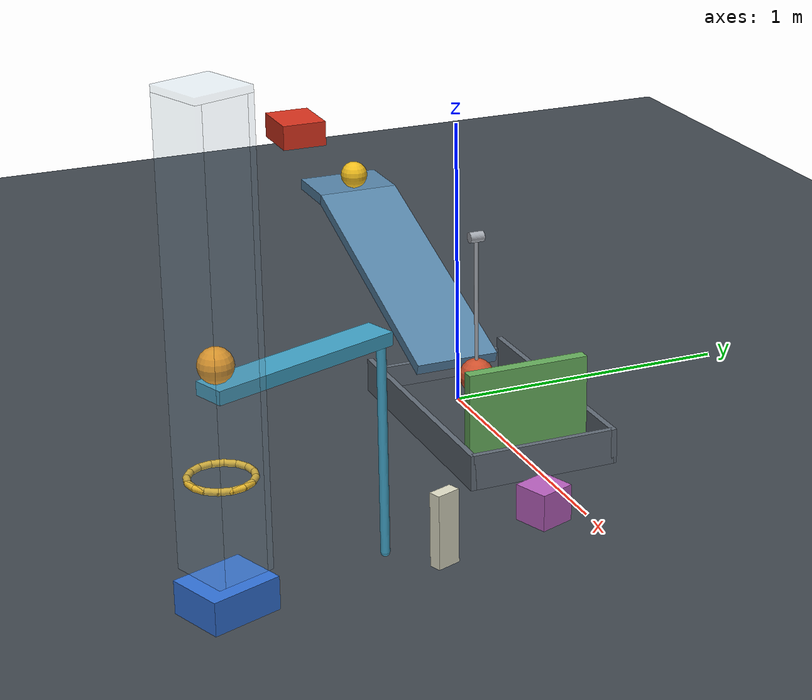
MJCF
<mujoco model="spring_ramp_pendulum_door_domino_lever_chain">
  <compiler angle="degree" autolimits="true"/>
  <option timestep="0.002" gravity="0 0 -9.81" integrator="implicitfast" cone="elliptic" iterations="100"/>
  <size njmax="4000" nconmax="800"/>

  <visual>
    <headlight ambient="0.35 0.35 0.35" diffuse="0.65 0.65 0.65" specular="0.2 0.2 0.2"/>
    <map znear="0.01" zfar="30"/>
  </visual>

  <worldbody>
    <light name="main_light" pos="-1 -3 5" dir="0.2 0.4 -1" directional="true"/>
    <camera name="overview" pos="0 -4.8 3.0" xyaxes="1 0 0 0 0.48 0.877"/>

    <geom name="floor" type="plane" size="5 5 0.1" friction="0.68 0.005 0.005" condim="6" solref="0.006 0.6901" solimp="0.95 0.99 0.001" rgba="0.25 0.28 0.31 1"/>

    <!-- The spring is compression-only: its tendon becomes slack after 0.20 m. -->
    <!-- Cart1 has 5 mm clearance above the launch shelf and travels 0.50 m to first contact. -->
    <body name="cart1" pos="-1.63969262 0 0.54702014">
      <joint name="cart1_slide" type="slide" axis="1 0 0" damping="0.20" limited="true" range="0 0.58" solreflimit="0.006 1"/>
      <geom name="cart1_chassis" type="box" size="0.11 0.09 0.05" mass="0.50" friction="0.68 0.005 0.005" condim="6" solref="0.006 0.6901" solimp="0.95 0.99 0.001" rgba="0.85 0.20 0.12 1"/>
    </body>

    <body name="ball1" pos="-0.97969262 0 0.54202014">
      <freejoint name="ball1_free"/>
      <geom name="ball1_sphere" type="sphere" size="0.05" mass="0.20" friction="0.68 0.005 0.005" condim="6" solref="0.006 0.6901" solimp="0.95 0.99 0.001" rgba="0.95 0.75 0.12 1"/>
    </body>

    <!-- The inclined top surface is 1.00 m long, 0.30 m wide, and ends at z=0.15. -->
    <!-- A level launch shelf keeps ball1 stationary until cart1 arrives. -->
    <body name="ramp1" pos="0 0 0">
      <geom name="ramp1_incline" type="box" pos="-0.47668671 0 0.30221629" quat="0.98480775 0 0.17364818 0" size="0.50 0.15 0.02" friction="0.68 0.005 0.005" condim="6" solref="0.006 0.6901" solimp="0.95 0.99 0.001" rgba="0.34 0.52 0.66 1"/>
      <geom name="ramp1_launch_shelf" type="box" pos="-1.04969262 0 0.47202014" size="0.11 0.15 0.02" friction="0.68 0.005 0.005" condim="6" solref="0.006 0.6901" solimp="0.95 0.99 0.001" rgba="0.34 0.52 0.66 1"/>
    </body>

    <!-- Bob's near surface is x=0.10: the gap from the ramp's low end is 0.10 m. -->
    <!-- Pivot-to-bob distance is 0.50 m; component masses sum to 0.35 kg. -->
    <body name="pendulum1" pos="0.16 0 0.65">
      <joint name="pendulum1_hinge" type="hinge" axis="0 -1 0" damping="0.04" limited="true" range="0 40" solreflimit="0.006 1"/>
      <geom name="pendulum1_hub" type="cylinder" quat="0.70710678 0.70710678 0 0" size="0.018 0.025" mass="0.01" friction="0.68 0.005 0.005" condim="6" solref="0.006 0.6901" solimp="0.95 0.99 0.001" rgba="0.65 0.67 0.70 1"/>
      <geom name="pendulum1_rod" type="capsule" fromto="0 0 0 0 0 -0.50" size="0.007" mass="0.04" friction="0.68 0.005 0.005" condim="6" solref="0.006 0.6901" solimp="0.95 0.99 0.001" rgba="0.65 0.67 0.70 1"/>
      <geom name="pendulum1_bob" type="sphere" pos="0 0 -0.50" size="0.06" mass="0.30" friction="0.68 0.005 0.005" condim="6" solref="0.006 0.6901" solimp="0.95 0.99 0.001" rgba="0.82 0.32 0.18 1"/>
    </body>

    <!-- Vertical-axis door: width 0.42, height 0.32, thickness 0.04 m. -->
    <!-- Positive door angle is clockwise when viewed from above. -->
    <body name="door1" pos="0.557 -0.21 0.18">
      <joint name="door1_hinge" type="hinge" axis="0 0 -1" damping="0.04" limited="true" range="0 70" solreflimit="0.006 1"/>
      <geom name="door1_panel" type="box" pos="0 0.21 0" size="0.02 0.21 0.16" mass="0.45" friction="0.68 0.005 0.005" condim="6" solref="0.006 0.6901" solimp="0.95 0.99 0.001" rgba="0.40 0.68 0.36 1"/>
    </body>

    <!-- Block and domino share a travel axis at yaw -70 degrees. -->
    <!-- Their initial face-to-face separation along that axis is 0.32 m. -->
    <body name="block1" pos="0.9773229 -0.1368290 0.06" quat="0.81915204 0 0 -0.57357644">
      <freejoint name="block1_free"/>
      <geom name="block1_cube" type="box" size="0.06 0.06 0.06" mass="0.35" friction="0.68 0.005 0.005" condim="6" solref="0.006 0.6901" solimp="0.95 0.99 0.001" rgba="0.73 0.38 0.75 1"/>
    </body>

    <body name="domino1" pos="1.1209714 -0.5314999 0.12" quat="0.81915204 0 0 -0.57357644">
      <freejoint name="domino1_free"/>
      <geom name="domino1_tile" type="box" size="0.04 0.02 0.12" mass="0.25" friction="0.68 0.005 0.005" condim="6" solref="0.006 0.6901" solimp="0.95 0.99 0.001" rgba="0.88 0.87 0.78 1"/>
    </body>

    <!-- Main lever: 0.60 x 0.10 x 0.04 m, centered on its hinge, total mass 0.50 kg. -->
    <!-- Its massless rigid striker reaches down to the domino's impact height. -->
    <!-- Initial domino-front to striker-front separation is approximately 0.18 m. -->
    <body name="lever1" pos="1.3036102 -1.0332920 0.80" quat="0.81915204 0 0 -0.57357644">
      <inertial pos="0 0 0" mass="0.50" diaginertia="0.0004833333 0.0150666667 0.0154166667"/>
      <joint name="lever1_hinge" type="hinge" axis="0 -1 0" damping="0.04" limited="true" range="0 45" solreflimit="0.006 1"/>
      <geom name="lever1_beam" type="box" size="0.30 0.05 0.02" mass="0.50" friction="0.68 0.005 0.005" condim="6" solref="0.006 0.6901" solimp="0.95 0.99 0.001" rgba="0.25 0.64 0.78 1"/>
      <geom name="lever1_left_striker" type="capsule" fromto="-0.30 0 -0.675 -0.30 0 0" size="0.014" mass="0" friction="0.68 0.005 0.005" condim="6" solref="0.006 0.6901" solimp="0.95 0.99 0.001" rgba="0.25 0.64 0.78 1"/>
    </body>

    <body name="ball2" pos="1.3959556 -1.2870090 0.87">
      <freejoint name="ball2_free"/>
      <geom name="ball2_sphere" type="sphere" size="0.05" mass="0.20" friction="0.68 0.005 0.005" condim="6" solref="0.006 0.6901" solimp="0.95 0.99 0.001" rgba="0.98 0.62 0.10 1"/>
    </body>

    <!-- Horizontal capsule ring; its inscribed clear diameter is 0.16 m. -->
    <!-- Its center is directly below ball2's initial center by 0.32 m. -->
    <body name="ring1" pos="1.3959556 -1.2870090 0.55">
      <geom name="ring1_segment_00" type="capsule" fromto="0.0917633 0 0 0.0847780 0.0351160 0" size="0.01" friction="0.68 0.005 0.005" condim="6" solref="0.006 0.6901" solimp="0.95 0.99 0.001" rgba="0.92 0.73 0.18 1"/>
      <geom name="ring1_segment_01" type="capsule" fromto="0.0847780 0.0351160 0 0.0648865 0.0648865 0" size="0.01" friction="0.68 0.005 0.005" condim="6" solref="0.006 0.6901" solimp="0.95 0.99 0.001" rgba="0.92 0.73 0.18 1"/>
      <geom name="ring1_segment_02" type="capsule" fromto="0.0648865 0.0648865 0 0.0351160 0.0847780 0" size="0.01" friction="0.68 0.005 0.005" condim="6" solref="0.006 0.6901" solimp="0.95 0.99 0.001" rgba="0.92 0.73 0.18 1"/>
      <geom name="ring1_segment_03" type="capsule" fromto="0.0351160 0.0847780 0 0 0.0917633 0" size="0.01" friction="0.68 0.005 0.005" condim="6" solref="0.006 0.6901" solimp="0.95 0.99 0.001" rgba="0.92 0.73 0.18 1"/>
      <geom name="ring1_segment_04" type="capsule" fromto="0 0.0917633 0 -0.0351160 0.0847780 0" size="0.01" friction="0.68 0.005 0.005" condim="6" solref="0.006 0.6901" solimp="0.95 0.99 0.001" rgba="0.92 0.73 0.18 1"/>
      <geom name="ring1_segment_05" type="capsule" fromto="-0.0351160 0.0847780 0 -0.0648865 0.0648865 0" size="0.01" friction="0.68 0.005 0.005" condim="6" solref="0.006 0.6901" solimp="0.95 0.99 0.001" rgba="0.92 0.73 0.18 1"/>
      <geom name="ring1_segment_06" type="capsule" fromto="-0.0648865 0.0648865 0 -0.0847780 0.0351160 0" size="0.01" friction="0.68 0.005 0.005" condim="6" solref="0.006 0.6901" solimp="0.95 0.99 0.001" rgba="0.92 0.73 0.18 1"/>
      <geom name="ring1_segment_07" type="capsule" fromto="-0.0847780 0.0351160 0 -0.0917633 0 0" size="0.01" friction="0.68 0.005 0.005" condim="6" solref="0.006 0.6901" solimp="0.95 0.99 0.001" rgba="0.92 0.73 0.18 1"/>
      <geom name="ring1_segment_08" type="capsule" fromto="-0.0917633 0 0 -0.0847780 -0.0351160 0" size="0.01" friction="0.68 0.005 0.005" condim="6" solref="0.006 0.6901" solimp="0.95 0.99 0.001" rgba="0.92 0.73 0.18 1"/>
      <geom name="ring1_segment_09" type="capsule" fromto="-0.0847780 -0.0351160 0 -0.0648865 -0.0648865 0" size="0.01" friction="0.68 0.005 0.005" condim="6" solref="0.006 0.6901" solimp="0.95 0.99 0.001" rgba="0.92 0.73 0.18 1"/>
      <geom name="ring1_segment_10" type="capsule" fromto="-0.0648865 -0.0648865 0 -0.0351160 -0.0847780 0" size="0.01" friction="0.68 0.005 0.005" condim="6" solref="0.006 0.6901" solimp="0.95 0.99 0.001" rgba="0.92 0.73 0.18 1"/>
      <geom name="ring1_segment_11" type="capsule" fromto="-0.0351160 -0.0847780 0 0 -0.0917633 0" size="0.01" friction="0.68 0.005 0.005" condim="6" solref="0.006 0.6901" solimp="0.95 0.99 0.001" rgba="0.92 0.73 0.18 1"/>
      <geom name="ring1_segment_12" type="capsule" fromto="0 -0.0917633 0 0.0351160 -0.0847780 0" size="0.01" friction="0.68 0.005 0.005" condim="6" solref="0.006 0.6901" solimp="0.95 0.99 0.001" rgba="0.92 0.73 0.18 1"/>
      <geom name="ring1_segment_13" type="capsule" fromto="0.0351160 -0.0847780 0 0.0648865 -0.0648865 0" size="0.01" friction="0.68 0.005 0.005" condim="6" solref="0.006 0.6901" solimp="0.95 0.99 0.001" rgba="0.92 0.73 0.18 1"/>
      <geom name="ring1_segment_14" type="capsule" fromto="0.0648865 -0.0648865 0 0.0847780 -0.0351160 0" size="0.01" friction="0.68 0.005 0.005" condim="6" solref="0.006 0.6901" solimp="0.95 0.99 0.001" rgba="0.92 0.73 0.18 1"/>
      <geom name="ring1_segment_15" type="capsule" fromto="0.0847780 -0.0351160 0 0.0917633 0 0" size="0.01" friction="0.68 0.005 0.005" condim="6" solref="0.006 0.6901" solimp="0.95 0.99 0.001" rgba="0.92 0.73 0.18 1"/>
    </body>

    <!-- Passive guide keeps the launched ball inside the ring's clear aperture. -->
    <body name="ball2_guide" pos="1.3959556 -1.2870090 0" quat="0.81915204 0 0 -0.57357644">
      <geom name="ball2_guide_left" type="box" pos="-0.081 0 0.94" size="0.01 0.091 0.66" friction="0.68 0.005 0.005" condim="6" solref="0.006 0.6901" solimp="0.95 0.99 0.001" rgba="0.60 0.75 0.85 0.18"/>
      <geom name="ball2_guide_right" type="box" pos="0.081 0 0.94" size="0.01 0.091 0.66" friction="0.68 0.005 0.005" condim="6" solref="0.006 0.6901" solimp="0.95 0.99 0.001" rgba="0.60 0.75 0.85 0.18"/>
      <geom name="ball2_guide_front" type="box" pos="0 -0.081 0.94" size="0.071 0.01 0.66" friction="0.68 0.005 0.005" condim="6" solref="0.006 0.6901" solimp="0.95 0.99 0.001" rgba="0.60 0.75 0.85 0.18"/>
      <geom name="ball2_guide_back" type="box" pos="0 0.081 0.94" size="0.071 0.01 0.66" friction="0.68 0.005 0.005" condim="6" solref="0.006 0.6901" solimp="0.95 0.99 0.001" rgba="0.60 0.75 0.85 0.18"/>
      <geom name="ball2_guide_ceiling" type="box" pos="0 0 1.61" size="0.091 0.091 0.01" friction="0.68 0.005 0.005" condim="6" solref="0.006 0.6901" solimp="0.95 0.99 0.001" rgba="0.60 0.75 0.85 0.18"/>
    </body>

    <!-- Cart top is z=0.25: ball center reaches z=0.30 at first contact. -->
    <!-- Thus ball2's center falls 0.25 m after crossing the ring's center plane. -->
    <body name="cart2" pos="1.3959556 -1.2870090 0.20" quat="0.81915204 0 0 -0.57357644">
      <joint name="cart2_slide" type="slide" axis="1 0 0" damping="0.20" limited="true" range="-0.04 0.04" solreflimit="0.006 1"/>
      <geom name="cart2_chassis" type="box" size="0.11 0.09 0.05" mass="0.50" friction="0.68 0.005 0.005" condim="6" solref="0.006 0.6901" solimp="0.95 0.99 0.001" rgba="0.20 0.45 0.85 1"/>
    </body>

    <!-- Low catch walls keep ball1 near the ramp after its pendulum impact. -->
    <body name="ball1_catch" pos="0 0 0">
      <geom name="ball1_catch_front" type="box" pos="0.25 -0.25 0.06" size="0.45 0.01 0.06" friction="0.68 0.005 0.005" condim="6" solref="0.006 0.6901" solimp="0.95 0.99 0.001" rgba="0.38 0.42 0.46 1"/>
      <geom name="ball1_catch_back" type="box" pos="0.25 0.25 0.06" size="0.45 0.01 0.06" friction="0.68 0.005 0.005" condim="6" solref="0.006 0.6901" solimp="0.95 0.99 0.001" rgba="0.38 0.42 0.46 1"/>
      <geom name="ball1_catch_end" type="box" pos="0.69 0 0.06" size="0.01 0.25 0.06" friction="0.68 0.005 0.005" condim="6" solref="0.006 0.6901" solimp="0.95 0.99 0.001" rgba="0.38 0.42 0.46 1"/>
      <geom name="ball1_catch_start" type="box" pos="-0.20 0 0.04" size="0.01 0.25 0.04" friction="0.68 0.005 0.005" condim="6" solref="0.006 0.6901" solimp="0.95 0.99 0.001" rgba="0.38 0.42 0.46 1"/>
    </body>
  </worldbody>

  <contact>
    <exclude name="lever_guide_clearance" body1="lever1" body2="ball2_guide"/>
    <exclude name="cart2_guide_clearance" body1="cart2" body2="ball2_guide"/>
    <exclude name="door_catch_clearance" body1="door1" body2="ball1_catch"/>
  </contact>

  <tendon>
    <fixed name="cart1_axial_spring" stiffness="18" damping="0" springlength="0.20 10">
      <joint joint="cart1_slide" coef="1"/>
    </fixed>
  </tendon>

  <!-- Constant controls enable native affine-gain hinge assistance. -->
  <!-- Force is control*(position_gain*q + velocity_gain*qvel), clamped nonnegative. -->
  <!-- At the start keyframe every hinge has q=qvel=0, so all assist torques are zero. -->
  <actuator>
    <general name="pendulum1_assist" joint="pendulum1_hinge" gaintype="affine" gainprm="0 2.5 0.35" biastype="none" ctrllimited="true" ctrlrange="0 1" forcelimited="true" forcerange="0 3"/>
    <general name="door1_assist" joint="door1_hinge" gaintype="affine" gainprm="0 25 0.50" biastype="none" ctrllimited="true" ctrlrange="0 1" forcelimited="true" forcerange="0 10"/>
    <general name="lever1_assist" joint="lever1_hinge" gaintype="affine" gainprm="0 12 0.80" biastype="none" ctrllimited="true" ctrlrange="0 1" forcelimited="true" forcerange="0 4"/>
  </actuator>

  <!-- Omitted qpos uses the model's reference configuration; omitted qvel is zero. -->
  <keyframe>
    <key name="start" time="0" ctrl="1 1 1"/>
  </keyframe>
</mujoco>
